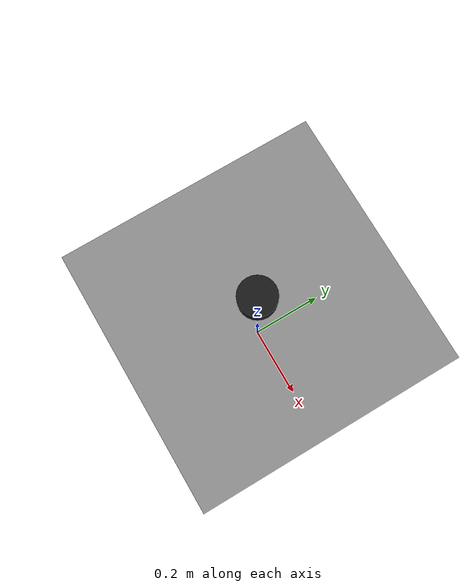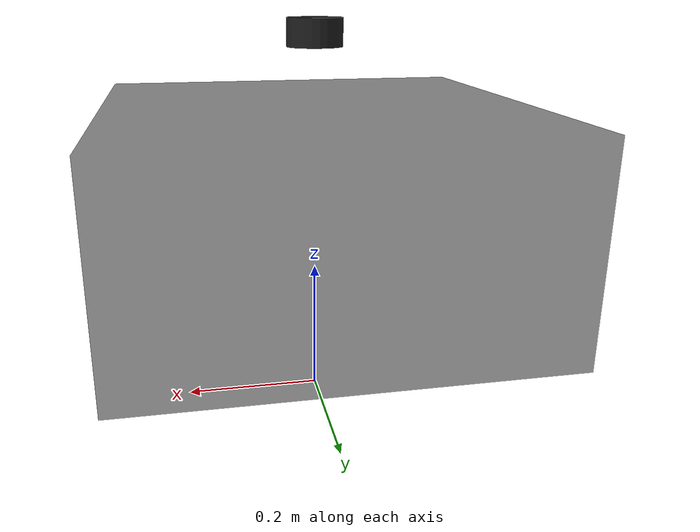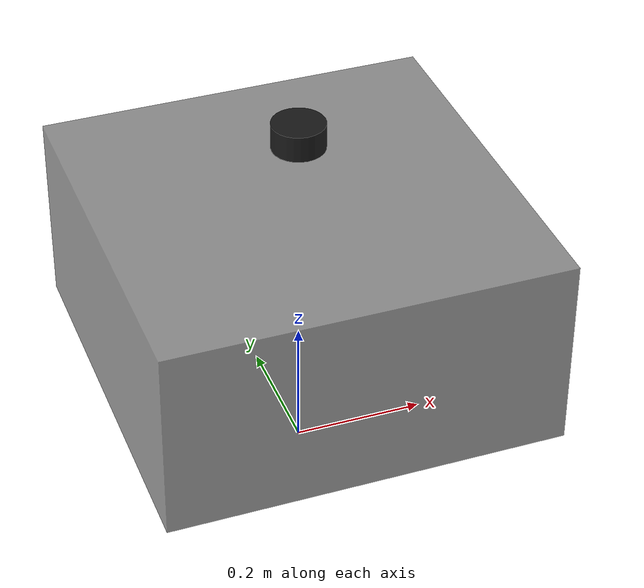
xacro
<?xml version="1.0"?>
<robot xmlns:xacro="http://www.ros.org/wiki/xacro" name="ezrassor">

  <!-- ==================== ROBOT PARAMETERS ==================== -->
  <!-- You can adjust these to match your actual rover -->

  <xacro:property name="body_length" value="0.6"/>   <!-- meters (2 feet) -->
  <xacro:property name="body_width" value="0.6"/>    <!-- meters (2 feet) -->
  <xacro:property name="body_height" value="0.3"/>   <!-- meters -->
  <xacro:property name="ground_clearance" value="0.15"/>  <!-- height of base_link above ground -->

  <!-- LiDAR mounting position (relative to base_link center) -->
  <xacro:property name="lidar_x" value="0.0"/>       <!-- centered front-back -->
  <xacro:property name="lidar_y" value="0.0"/>       <!-- centered left-right -->
  <xacro:property name="lidar_z" value="0.25"/>      <!-- 25cm above base_link -->

  <!-- ==================== BASE FOOTPRINT ==================== -->
  <!--
    This is a virtual frame at ground level, directly below the robot.
    NAV2 uses this for the robot's "footprint" on the ground.
  -->
  <link name="base_footprint"/>

  <!-- ==================== BASE LINK ==================== -->
  <!--
    The main robot body frame. All other parts attach to this.
    This is the robot's "center" for navigation purposes.
  -->
  <link name="base_link">
    <!-- Visual: What you see in RViz (optional but helpful) -->
    <visual>
      <origin xyz="0 0 0" rpy="0 0 0"/>
      <geometry>
        <box size="${body_length} ${body_width} ${body_height}"/>
      </geometry>
      <material name="grey">
        <color rgba="0.5 0.5 0.5 0.8"/>
      </material>
    </visual>

    <!-- Collision: Used for collision checking (same as visual here) -->
    <collision>
      <origin xyz="0 0 0" rpy="0 0 0"/>
      <geometry>
        <box size="${body_length} ${body_width} ${body_height}"/>
      </geometry>
    </collision>
  </link>

  <!-- Joint connecting base_footprint to base_link -->
  <joint name="base_joint" type="fixed">
    <parent link="base_footprint"/>
    <child link="base_link"/>
    <!-- Lift base_link up by ground_clearance + half body height -->
    <origin xyz="0 0 ${ground_clearance + body_height/2}" rpy="0 0 0"/>
  </joint>

  <!-- ==================== LIDAR ==================== -->
  <!--
    RPLidar A1 mounted on top of the robot.
    The frame_id in the LiDAR driver must match this link name!
  -->
  <link name="laser_frame">
    <!-- Visual representation of the LiDAR -->
    <visual>
      <origin xyz="0 0 0" rpy="0 0 0"/>
      <geometry>
        <cylinder radius="0.04" length="0.04"/>
      </geometry>
      <material name="black">
        <color rgba="0.1 0.1 0.1 1.0"/>
      </material>
    </visual>
  </link>

  <!-- Joint connecting LiDAR to base_link -->
  <joint name="laser_joint" type="fixed">
    <parent link="base_link"/>
    <child link="laser_frame"/>
    <!-- Position: centered on robot, 25cm above base_link -->
    <origin xyz="${lidar_x} ${lidar_y} ${lidar_z}" rpy="0 0 0"/>
  </joint>

  <!-- ==================== DEPTH CAMERA (placeholder) ==================== -->
  <!--
    Uncomment this section when the Orbbec Astra Pro Plus arrives.
    Adjust the xyz values to match where you mount it.
  -->

</robot>
